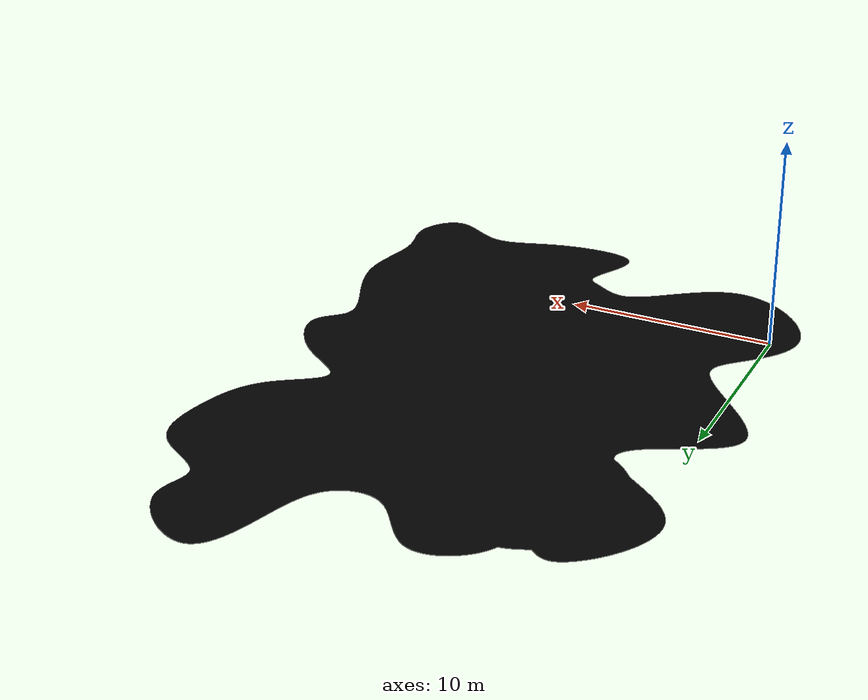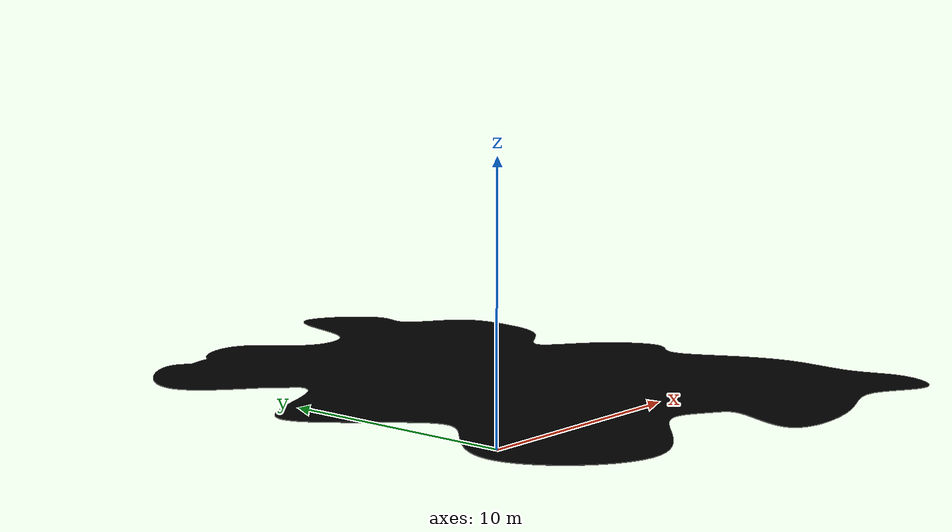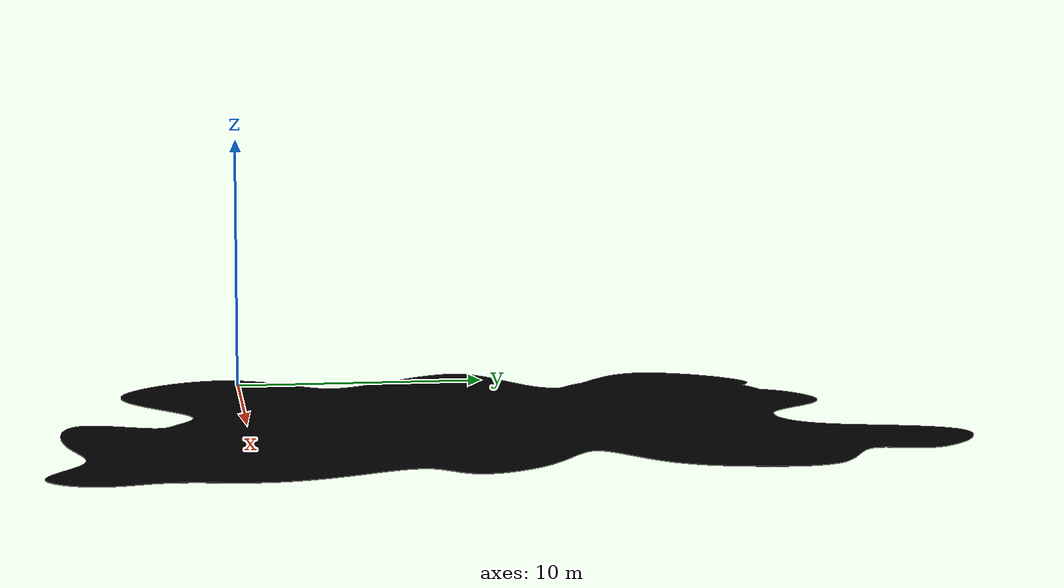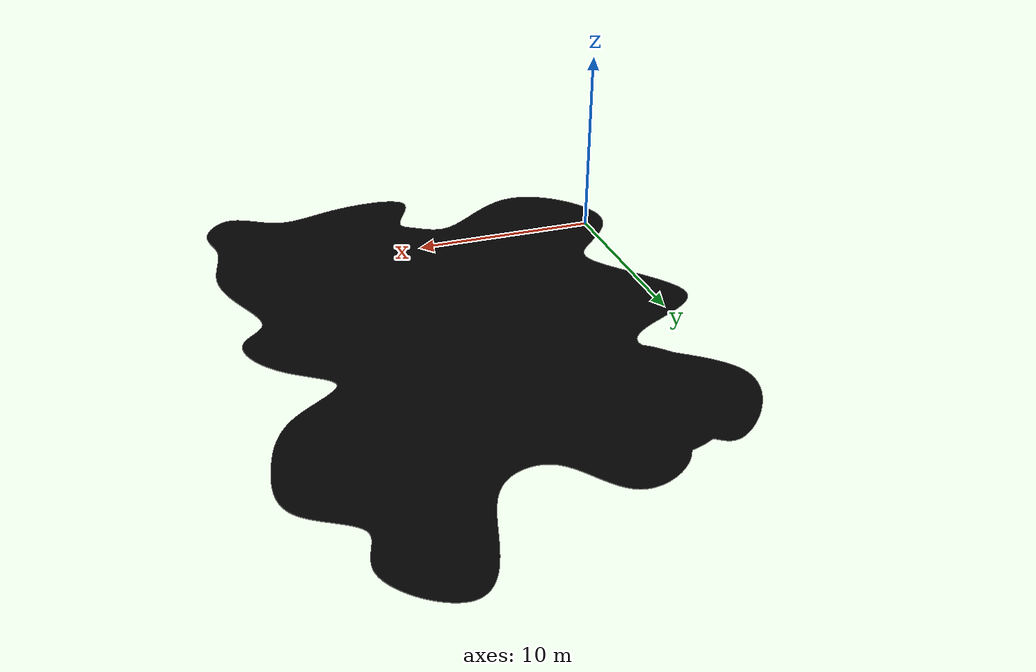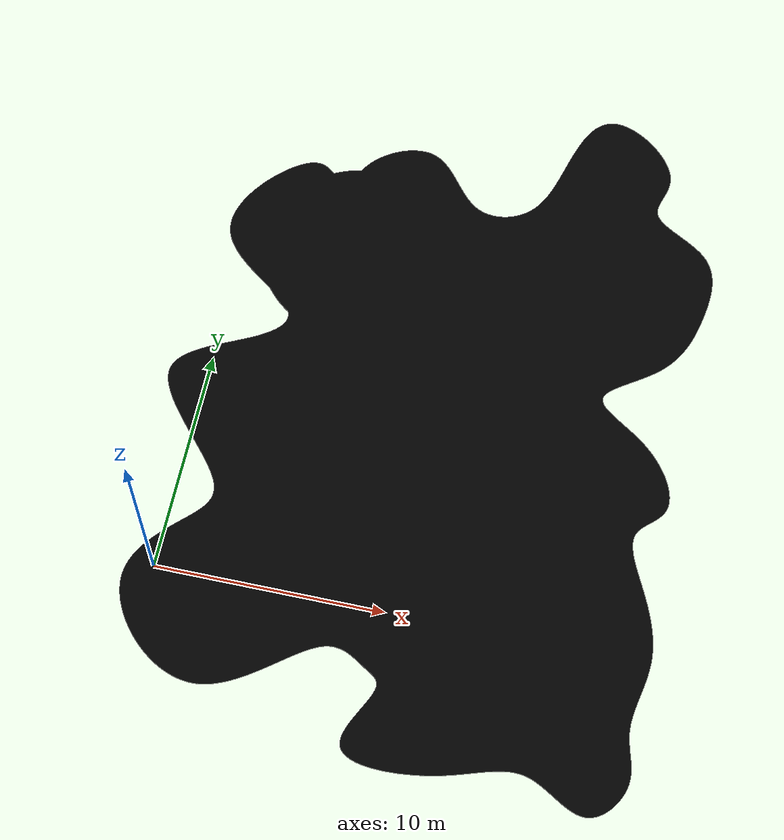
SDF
<?xml version='1.0'?>
<sdf version='1.5'>
  <model name='oil_spill'>
    <static>true</static>
    <link name="oil_spill">
      <visual name="visual">
            <geometry>
                <mesh>
                    <uri>model://oil_spill/meshes/oil_spill.dae</uri>
                </mesh>
            </geometry>
        </visual>
        <collision name="collision">
            <geometry>
                <mesh>
                         <uri>model://oil_spill/meshes/oil_spill.dae</uri>
                </mesh>
            </geometry>
        </collision>
    </link>
  </model>
</sdf>
